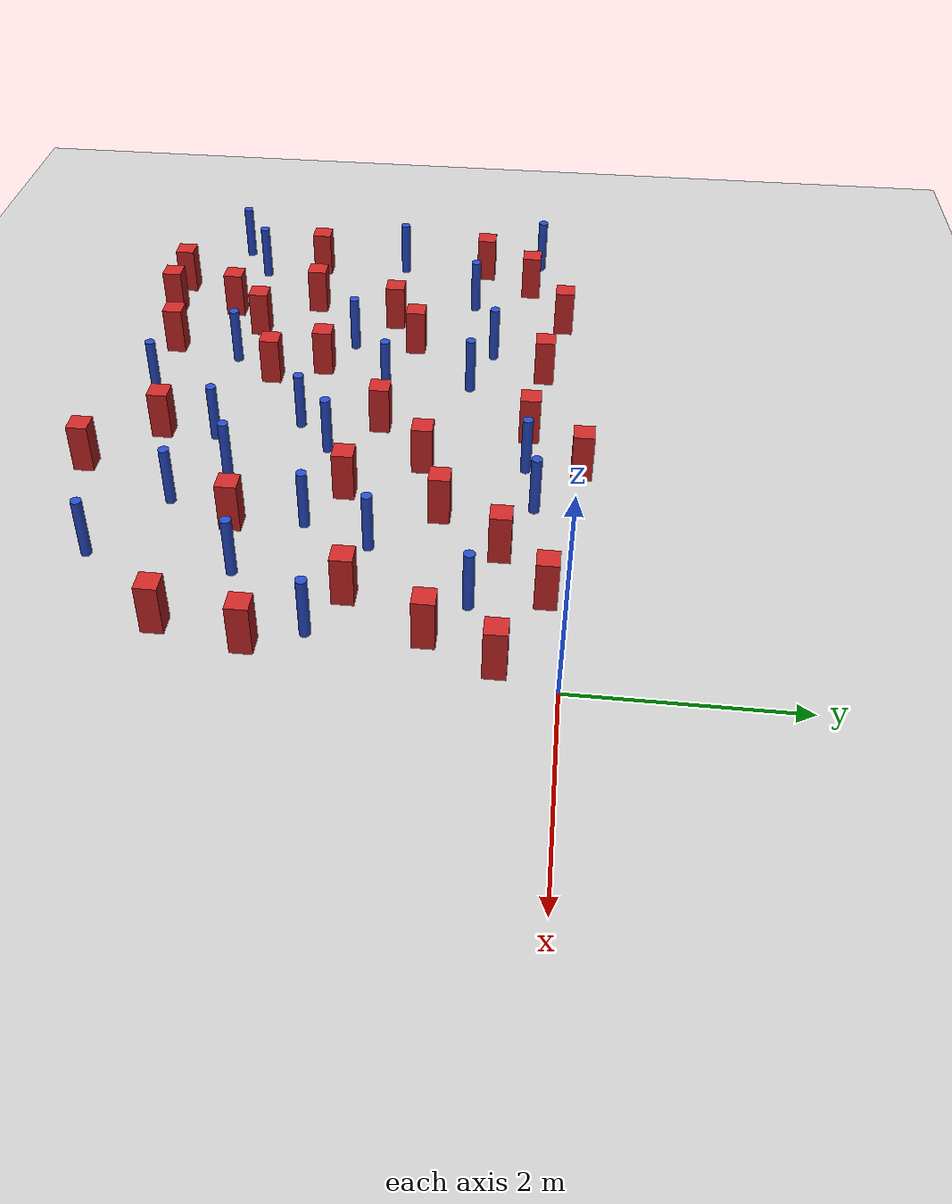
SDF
<sdf version="1.6">
 <world name="default">
  <model name="ground_plane">
   <static>1</static>
   <link name="link">
    <collision name="collision">
     <geometry><plane><normal>0 0 1</normal><size>100 100</size></plane></geometry>
     <surface><friction><ode><mu>100</mu><mu2>50</mu2></ode></friction></surface>
    </collision>
    <visual name="visual">
     <cast_shadows>0</cast_shadows>
     <geometry><plane><normal>0 0 1</normal><size>100 100</size></plane></geometry>
     <material>
      <ambient>1.0 1.0 1.0 1.0</ambient>
      <diffuse>0.8 0.8 0.8 1.0</diffuse>
      <specular>0.01 0.01 0.01 1.000000</specular>
     </material>
    </visual>
   </link>
  </model>
  <model name="square_post_obstacle1">
   <static>true</static>
   <pose>-5.03829176907 -3.4363562072 8.22691968438e-08 7.2212513382e-06 -7.54495500217e-07 2.29674213826e-05</pose>
   <link name="link">
    <pose>0 0 0.25 0 -0 0</pose>
    <inertial>
     <mass>100</mass>
     <inertia>
      <ixx>0.166667</ixx>
      <ixy>0</ixy>
      <ixz>0</ixz>
      <iyy>0.166667</iyy>
      <iyz>0</iyz>
      <izz>0.166667</izz>
     </inertia>
    </inertial>
    <collision name="collision"><geometry><box><size>.2 .2 .5</size></box></geometry></collision>
    <visual name="visual">
     <geometry><box><size>.2 .2 .5</size></box></geometry>
     <material>
      <script><name>Gazebo/Red</name><uri>file://media/materials/scripts/gazebo.material</uri></script>
     </material>
    </visual>
   </link>
  </model>
  <model name="pole_obstacle2">
   <static>true</static>
   <pose>-3.03560111655 -3.47882429792 2.88873142074e-08 -9.90536690232e-09 4.6021994898e-07 -1.20965994968e-07</pose>
   <link name="link">
    <pose>0 0 0.3 0 -0 0</pose>
    <inertial>
     <mass>1</mass>
     <inertia><ixx>0.145833</ixx><ixy>0</ixy><ixz>0</ixz><iyy>0.145833</iyy><iyz>0</iyz><izz>0.125</izz></inertia>
    </inertial>
    <collision name="collision">
     <geometry><cylinder><radius>0.05</radius><length>.6</length></cylinder></geometry>
    </collision>
    <visual name="visual">
     <geometry><cylinder><radius>0.05</radius><length>.6</length></cylinder></geometry>
     <material>
      <script><name>Gazebo/Blue</name><uri>file://media/materials/scripts/gazebo.material</uri></script>
     </material>
    </visual>
   </link>
  </model>
  <model name="square_post_obstacle13">
   <static>true</static>
   <pose>-2.82691644782 0.126163926508 8.22691968438e-08 7.2212513382e-06 -7.54495500217e-07 2.29674213826e-05</pose>
   <link name="link">
    <pose>0 0 0.25 0 -0 0</pose>
    <inertial>
     <mass>100</mass>
     <inertia>
      <ixx>0.166667</ixx>
      <ixy>0</ixy>
      <ixz>0</ixz>
      <iyy>0.166667</iyy>
      <iyz>0</iyz>
      <izz>0.166667</izz>
     </inertia>
    </inertial>
    <collision name="collision"><geometry><box><size>.2 .2 .5</size></box></geometry></collision>
    <visual name="visual">
     <geometry><box><size>.2 .2 .5</size></box></geometry>
     <material>
      <script><name>Gazebo/Red</name><uri>file://media/materials/scripts/gazebo.material</uri></script>
     </material>
    </visual>
   </link>
  </model>
  <model name="square_post_obstacle15">
   <static>true</static>
   <pose>-4.6053324093 -4.27422542623 8.22691968438e-08 7.22125133819e-06 -7.54495500217e-07 2.29674213826e-05</pose>
   <link name="link">
    <pose>0 0 0.25 0 -0 0</pose>
    <inertial>
     <mass>100</mass>
     <inertia>
      <ixx>0.166667</ixx>
      <ixy>0</ixy>
      <ixz>0</ixz>
      <iyy>0.166667</iyy>
      <iyz>0</iyz>
      <izz>0.166667</izz>
     </inertia>
    </inertial>
    <collision name="collision"><geometry><box><size>.2 .2 .5</size></box></geometry></collision>
    <visual name="visual">
     <geometry><box><size>.2 .2 .5</size></box></geometry>
     <material>
      <script><name>Gazebo/Red</name><uri>file://media/materials/scripts/gazebo.material</uri></script>
     </material>
    </visual>
   </link>
  </model>
  <model name="pole_obstacle10">
   <static>true</static>
   <pose>-4.76662883871 -0.850750414074 2.88873142074e-08 -9.90536689837e-09 4.60219948989e-07 -1.2096599496e-07</pose>
   <link name="link">
    <pose>0 0 0.3 0 -0 0</pose>
    <inertial>
     <mass>1</mass>
     <inertia><ixx>0.145833</ixx><ixy>0</ixy><ixz>0</ixz><iyy>0.145833</iyy><iyz>0</iyz><izz>0.125</izz></inertia>
    </inertial>
    <collision name="collision">
     <geometry><cylinder><radius>0.05</radius><length>.6</length></cylinder></geometry>
    </collision>
    <visual name="visual">
     <geometry><cylinder><radius>0.05</radius><length>.6</length></cylinder></geometry>
     <material>
      <script><name>Gazebo/Blue</name><uri>file://media/materials/scripts/gazebo.material</uri></script>
     </material>
    </visual>
   </link>
  </model>
  <model name="pole_obstacle14">
   <static>true</static>
   <pose>-4.43251508346 -3.57022611527 2.88873142074e-08 -9.90536690245e-09 4.6021994898e-07 -1.20965994966e-07</pose>
   <link name="link">
    <pose>0 0 0.3 0 -0 0</pose>
    <inertial>
     <mass>1</mass>
     <inertia><ixx>0.145833</ixx><ixy>0</ixy><ixz>0</ixz><iyy>0.145833</iyy><iyz>0</iyz><izz>0.125</izz></inertia>
    </inertial>
    <collision name="collision">
     <geometry><cylinder><radius>0.05</radius><length>.6</length></cylinder></geometry>
    </collision>
    <visual name="visual">
     <geometry><cylinder><radius>0.05</radius><length>.6</length></cylinder></geometry>
     <material>
      <script><name>Gazebo/Blue</name><uri>file://media/materials/scripts/gazebo.material</uri></script>
     </material>
    </visual>
   </link>
  </model>
  <model name="square_post_obstacle27">
   <static>true</static>
   <pose>-2.30330379362 -2.06793703243 8.22691968438e-08 7.22125133819e-06 -7.54495500217e-07 2.29674213826e-05</pose>
   <link name="link">
    <pose>0 0 0.25 0 -0 0</pose>
    <inertial>
     <mass>100</mass>
     <inertia>
      <ixx>0.166667</ixx>
      <ixy>0</ixy>
      <ixz>0</ixz>
      <iyy>0.166667</iyy>
      <iyz>0</iyz>
      <izz>0.166667</izz>
     </inertia>
    </inertial>
    <collision name="collision"><geometry><box><size>.2 .2 .5</size></box></geometry></collision>
    <visual name="visual">
     <geometry><box><size>.2 .2 .5</size></box></geometry>
     <material>
      <script><name>Gazebo/Red</name><uri>file://media/materials/scripts/gazebo.material</uri></script>
     </material>
    </visual>
   </link>
  </model>
  <model name="square_post_obstacle29">
   <static>true</static>
   <pose>-5.41931736612 -0.126221475294 8.22691968438e-08 7.2212513382e-06 -7.54495500217e-07 2.29674213826e-05</pose>
   <link name="link">
    <pose>0 0 0.25 0 -0 0</pose>
    <inertial>
     <mass>100</mass>
     <inertia>
      <ixx>0.166667</ixx>
      <ixy>0</ixy>
      <ixz>0</ixz>
      <iyy>0.166667</iyy>
      <iyz>0</iyz>
      <izz>0.166667</izz>
     </inertia>
    </inertial>
    <collision name="collision"><geometry><box><size>.2 .2 .5</size></box></geometry></collision>
    <visual name="visual">
     <geometry><box><size>.2 .2 .5</size></box></geometry>
     <material>
      <script><name>Gazebo/Red</name><uri>file://media/materials/scripts/gazebo.material</uri></script>
     </material>
    </visual>
   </link>
  </model>
  <model name="square_post_obstacle34">
   <static>true</static>
   <pose>-5.38451380914 -4.48503809288 8.22691968438e-08 7.22125133819e-06 -7.54495500217e-07 2.29674213826e-05</pose>
   <link name="link">
    <pose>0 0 0.25 0 -0 0</pose>
    <inertial>
     <mass>100</mass>
     <inertia>
      <ixx>0.166667</ixx>
      <ixy>0</ixy>
      <ixz>0</ixz>
      <iyy>0.166667</iyy>
      <iyz>0</iyz>
      <izz>0.166667</izz>
     </inertia>
    </inertial>
    <collision name="collision"><geometry><box><size>.2 .2 .5</size></box></geometry></collision>
    <visual name="visual">
     <geometry><box><size>.2 .2 .5</size></box></geometry>
     <material>
      <script><name>Gazebo/Red</name><uri>file://media/materials/scripts/gazebo.material</uri></script>
     </material>
    </visual>
   </link>
  </model>
  <model name="pole_obstacle35">
   <static>true</static>
   <pose>-3.75419546902 -4.28227238803 2.88873142074e-08 -9.90536692062e-09 4.60219948937e-07 -1.20965994985e-07</pose>
   <link name="link">
    <pose>0 0 0.3 0 -0 0</pose>
    <inertial>
     <mass>1</mass>
     <inertia><ixx>0.145833</ixx><ixy>0</ixy><ixz>0</ixz><iyy>0.145833</iyy><iyz>0</iyz><izz>0.125</izz></inertia>
    </inertial>
    <collision name="collision">
     <geometry><cylinder><radius>0.05</radius><length>.6</length></cylinder></geometry>
    </collision>
    <visual name="visual">
     <geometry><cylinder><radius>0.05</radius><length>.6</length></cylinder></geometry>
     <material>
      <script><name>Gazebo/Blue</name><uri>file://media/materials/scripts/gazebo.material</uri></script>
     </material>
    </visual>
   </link>
  </model>
  <model name="square_post_obstacle36">
   <static>true</static>
   <pose>-6.15775819559 -0.521843063135 8.22691968438e-08 7.22125133819e-06 -7.54495500217e-07 2.29674213826e-05</pose>
   <link name="link">
    <pose>0 0 0.25 0 -0 0</pose>
    <inertial>
     <mass>100</mass>
     <inertia>
      <ixx>0.166667</ixx>
      <ixy>0</ixy>
      <ixz>0</ixz>
      <iyy>0.166667</iyy>
      <iyz>0</iyz>
      <izz>0.166667</izz>
     </inertia>
    </inertial>
    <collision name="collision"><geometry><box><size>.2 .2 .5</size></box></geometry></collision>
    <visual name="visual">
     <geometry><box><size>.2 .2 .5</size></box></geometry>
     <material>
      <script><name>Gazebo/Red</name><uri>file://media/materials/scripts/gazebo.material</uri></script>
     </material>
    </visual>
   </link>
  </model>
  <model name="pole_obstacle41">
   <static>true</static>
   <pose>-2.00583015402 -3.66161861131 2.88873142074e-08 -9.90536692171e-09 4.60219948934e-07 -1.20965994985e-07</pose>
   <link name="link">
    <pose>0 0 0.3 0 -0 0</pose>
    <inertial>
     <mass>1</mass>
     <inertia><ixx>0.145833</ixx><ixy>0</ixy><ixz>0</ixz><iyy>0.145833</iyy><iyz>0</iyz><izz>0.125</izz></inertia>
    </inertial>
    <collision name="collision">
     <geometry><cylinder><radius>0.05</radius><length>.6</length></cylinder></geometry>
    </collision>
    <visual name="visual">
     <geometry><cylinder><radius>0.05</radius><length>.6</length></cylinder></geometry>
     <material>
      <script><name>Gazebo/Blue</name><uri>file://media/materials/scripts/gazebo.material</uri></script>
     </material>
    </visual>
   </link>
  </model>
  <model name="square_post_obstacle42">
   <static>true</static>
   <pose>-3.38391990324 -1.88117775958 8.22691968438e-08 7.2212513382e-06 -7.54495500217e-07 2.29674213826e-05</pose>
   <link name="link">
    <pose>0 0 0.25 0 -0 0</pose>
    <inertial>
     <mass>100</mass>
     <inertia>
      <ixx>0.166667</ixx>
      <ixy>0</ixy>
      <ixz>0</ixz>
      <iyy>0.166667</iyy>
      <iyz>0</iyz>
      <izz>0.166667</izz>
     </inertia>
    </inertial>
    <collision name="collision"><geometry><box><size>.2 .2 .5</size></box></geometry></collision>
    <visual name="visual">
     <geometry><box><size>.2 .2 .5</size></box></geometry>
     <material>
      <script><name>Gazebo/Red</name><uri>file://media/materials/scripts/gazebo.material</uri></script>
     </material>
    </visual>
   </link>
  </model>
  <model name="square_post_obstacle44">
   <static>true</static>
   <pose>-3.06598202881 -4.01060751719 8.22691968438e-08 7.2212513382e-06 -7.54495500217e-07 2.29674213826e-05</pose>
   <link name="link">
    <pose>0 0 0.25 0 -0 0</pose>
    <inertial>
     <mass>100</mass>
     <inertia>
      <ixx>0.166667</ixx>
      <ixy>0</ixy>
      <ixz>0</ixz>
      <iyy>0.166667</iyy>
      <iyz>0</iyz>
      <izz>0.166667</izz>
     </inertia>
    </inertial>
    <collision name="collision"><geometry><box><size>.2 .2 .5</size></box></geometry></collision>
    <visual name="visual">
     <geometry><box><size>.2 .2 .5</size></box></geometry>
     <material>
      <script><name>Gazebo/Red</name><uri>file://media/materials/scripts/gazebo.material</uri></script>
     </material>
    </visual>
   </link>
  </model>
  <model name="square_post_obstacle47">
   <static>true</static>
   <pose>-4.134142469 -3.13054158161 8.22691968438e-08 7.2212513382e-06 -7.54495500217e-07 2.29674213826e-05</pose>
   <link name="link">
    <pose>0 0 0.25 0 -0 0</pose>
    <inertial>
     <mass>100</mass>
     <inertia>
      <ixx>0.166667</ixx>
      <ixy>0</ixy>
      <ixz>0</ixz>
      <iyy>0.166667</iyy>
      <iyz>0</iyz>
      <izz>0.166667</izz>
     </inertia>
    </inertial>
    <collision name="collision"><geometry><box><size>.2 .2 .5</size></box></geometry></collision>
    <visual name="visual">
     <geometry><box><size>.2 .2 .5</size></box></geometry>
     <material>
      <script><name>Gazebo/Red</name><uri>file://media/materials/scripts/gazebo.material</uri></script>
     </material>
    </visual>
   </link>
  </model>
  <model name="pole_obstacle52">
   <static>true</static>
   <pose>-6.53274158325 -2.01664250936 2.88873142074e-08 -9.90536689749e-09 4.60219948991e-07 -1.20965994959e-07</pose>
   <link name="link">
    <pose>0 0 0.3 0 -0 0</pose>
    <inertial>
     <mass>1</mass>
     <inertia><ixx>0.145833</ixx><ixy>0</ixy><ixz>0</ixz><iyy>0.145833</iyy><iyz>0</iyz><izz>0.125</izz></inertia>
    </inertial>
    <collision name="collision">
     <geometry><cylinder><radius>0.05</radius><length>.6</length></cylinder></geometry>
    </collision>
    <visual name="visual">
     <geometry><cylinder><radius>0.05</radius><length>.6</length></cylinder></geometry>
     <material>
      <script><name>Gazebo/Blue</name><uri>file://media/materials/scripts/gazebo.material</uri></script>
     </material>
    </visual>
   </link>
  </model>
  <model name="square_post_obstacle63">
   <static>true</static>
   <pose>-1.74965284042 -3.0216194504 8.22691968438e-08 7.2212513382e-06 -7.54495500217e-07 2.29674213826e-05</pose>
   <link name="link">
    <pose>0 0 0.25 0 -0 0</pose>
    <inertial>
     <mass>100</mass>
     <inertia>
      <ixx>0.166667</ixx>
      <ixy>0</ixy>
      <ixz>0</ixz>
      <iyy>0.166667</iyy>
      <iyz>0</iyz>
      <izz>0.166667</izz>
     </inertia>
    </inertial>
    <collision name="collision"><geometry><box><size>.2 .2 .5</size></box></geometry></collision>
    <visual name="visual">
     <geometry><box><size>.2 .2 .5</size></box></geometry>
     <material>
      <script><name>Gazebo/Red</name><uri>file://media/materials/scripts/gazebo.material</uri></script>
     </material>
    </visual>
   </link>
  </model>
  <model name="pole_obstacle61">
   <static>true</static>
   <pose>-1.10434596322 -2.87603380474 2.88873142074e-08 -9.90536689791e-09 4.6021994899e-07 -1.20965994959e-07</pose>
   <link name="link">
    <pose>0 0 0.3 0 -0 0</pose>
    <inertial>
     <mass>1</mass>
     <inertia><ixx>0.145833</ixx><ixy>0</ixy><ixz>0</ixz><iyy>0.145833</iyy><iyz>0</iyz><izz>0.125</izz></inertia>
    </inertial>
    <collision name="collision">
     <geometry><cylinder><radius>0.05</radius><length>.6</length></cylinder></geometry>
    </collision>
    <visual name="visual">
     <geometry><cylinder><radius>0.05</radius><length>.6</length></cylinder></geometry>
     <material>
      <script><name>Gazebo/Blue</name><uri>file://media/materials/scripts/gazebo.material</uri></script>
     </material>
    </visual>
   </link>
  </model>
  <model name="square_post_obstacle65">
   <static>true</static>
   <pose>-1.57874251354 -0.568553330349 8.22691968438e-08 7.22125133819e-06 -7.54495500217e-07 2.29674213826e-05</pose>
   <link name="link">
    <pose>0 0 0.25 0 -0 0</pose>
    <inertial>
     <mass>100</mass>
     <inertia>
      <ixx>0.166667</ixx>
      <ixy>0</ixy>
      <ixz>0</ixz>
      <iyy>0.166667</iyy>
      <iyz>0</iyz>
      <izz>0.166667</izz>
     </inertia>
    </inertial>
    <collision name="collision"><geometry><box><size>.2 .2 .5</size></box></geometry></collision>
    <visual name="visual">
     <geometry><box><size>.2 .2 .5</size></box></geometry>
     <material>
      <script><name>Gazebo/Red</name><uri>file://media/materials/scripts/gazebo.material</uri></script>
     </material>
    </visual>
   </link>
  </model>
  <model name="square_post_obstacle72">
   <static>true</static>
   <pose>-1.031031879 -0.141461832161 8.22691968438e-08 7.2212513382e-06 -7.54495500217e-07 2.29674213826e-05</pose>
   <link name="link">
    <pose>0 0 0.25 0 -0 0</pose>
    <inertial>
     <mass>100</mass>
     <inertia>
      <ixx>0.166667</ixx>
      <ixy>0</ixy>
      <ixz>0</ixz>
      <iyy>0.166667</iyy>
      <iyz>0</iyz>
      <izz>0.166667</izz>
     </inertia>
    </inertial>
    <collision name="collision"><geometry><box><size>.2 .2 .5</size></box></geometry></collision>
    <visual name="visual">
     <geometry><box><size>.2 .2 .5</size></box></geometry>
     <material>
      <script><name>Gazebo/Red</name><uri>file://media/materials/scripts/gazebo.material</uri></script>
     </material>
    </visual>
   </link>
  </model>
  <model name="square_post_obstacle81">
   <static>true</static>
   <pose>-6.44369759555 -2.98168160678 8.22691968438e-08 7.2212513382e-06 -7.54495500217e-07 2.29674213826e-05</pose>
   <link name="link">
    <pose>0 0 0.25 0 -0 0</pose>
    <inertial>
     <mass>100</mass>
     <inertia>
      <ixx>0.166667</ixx>
      <ixy>0</ixy>
      <ixz>0</ixz>
      <iyy>0.166667</iyy>
      <iyz>0</iyz>
      <izz>0.166667</izz>
     </inertia>
    </inertial>
    <collision name="collision"><geometry><box><size>.2 .2 .5</size></box></geometry></collision>
    <visual name="visual">
     <geometry><box><size>.2 .2 .5</size></box></geometry>
     <material>
      <script><name>Gazebo/Red</name><uri>file://media/materials/scripts/gazebo.material</uri></script>
     </material>
    </visual>
   </link>
  </model>
  <model name="pole_obstacle90">
   <static>true</static>
   <pose>-6.76177031575 -0.426575106834 2.88873142074e-08 -9.90536689981e-09 4.60219948986e-07 -1.20965994962e-07</pose>
   <link name="link">
    <pose>0 0 0.3 0 -0 0</pose>
    <inertial>
     <mass>1</mass>
     <inertia><ixx>0.145833</ixx><ixy>0</ixy><ixz>0</ixz><iyy>0.145833</iyy><iyz>0</iyz><izz>0.125</izz></inertia>
    </inertial>
    <collision name="collision">
     <geometry><cylinder><radius>0.05</radius><length>.6</length></cylinder></geometry>
    </collision>
    <visual name="visual">
     <geometry><cylinder><radius>0.05</radius><length>.6</length></cylinder></geometry>
     <material>
      <script><name>Gazebo/Blue</name><uri>file://media/materials/scripts/gazebo.material</uri></script>
     </material>
    </visual>
   </link>
  </model>
  <model name="pole_obstacle92">
   <static>true</static>
   <pose>-1.80519854814 -2.36120548388 2.88873142074e-08 -9.90536689791e-09 4.6021994899e-07 -1.20965994959e-07</pose>
   <link name="link">
    <pose>0 0 0.3 0 -0 0</pose>
    <inertial>
     <mass>1</mass>
     <inertia><ixx>0.145833</ixx><ixy>0</ixy><ixz>0</ixz><iyy>0.145833</iyy><iyz>0</iyz><izz>0.125</izz></inertia>
    </inertial>
    <collision name="collision">
     <geometry><cylinder><radius>0.05</radius><length>.6</length></cylinder></geometry>
    </collision>
    <visual name="visual">
     <geometry><cylinder><radius>0.05</radius><length>.6</length></cylinder></geometry>
     <material>
      <script><name>Gazebo/Blue</name><uri>file://media/materials/scripts/gazebo.material</uri></script>
     </material>
    </visual>
   </link>
  </model>
  <model name="pole_obstacle95">
   <static>true</static>
   <pose>-0.439773823406 -2.10316071835 2.88873142074e-08 -9.90536689663e-09 4.60219948993e-07 -1.20965994959e-07</pose>
   <link name="link">
    <pose>0 0 0.3 0 -0 0</pose>
    <inertial>
     <mass>1</mass>
     <inertia><ixx>0.145833</ixx><ixy>0</ixy><ixz>0</ixz><iyy>0.145833</iyy><iyz>0</iyz><izz>0.125</izz></inertia>
    </inertial>
    <collision name="collision">
     <geometry><cylinder><radius>0.05</radius><length>.6</length></cylinder></geometry>
    </collision>
    <visual name="visual">
     <geometry><cylinder><radius>0.05</radius><length>.6</length></cylinder></geometry>
     <material>
      <script><name>Gazebo/Blue</name><uri>file://media/materials/scripts/gazebo.material</uri></script>
     </material>
    </visual>
   </link>
  </model>
  <model name="square_post_obstacle84">
   <static>true</static>
   <pose>-5.32880282236 -1.97674150562 8.22691968438e-08 7.22125133819e-06 -7.54495500217e-07 2.29674213826e-05</pose>
   <link name="link">
    <pose>0 0 0.25 0 -0 0</pose>
    <inertial>
     <mass>100</mass>
     <inertia>
      <ixx>0.166667</ixx>
      <ixy>0</ixy>
      <ixz>0</ixz>
      <iyy>0.166667</iyy>
      <iyz>0</iyz>
      <izz>0.166667</izz>
     </inertia>
    </inertial>
    <collision name="collision"><geometry><box><size>.2 .2 .5</size></box></geometry></collision>
    <visual name="visual">
     <geometry><box><size>.2 .2 .5</size></box></geometry>
     <material>
      <script><name>Gazebo/Red</name><uri>file://media/materials/scripts/gazebo.material</uri></script>
     </material>
    </visual>
   </link>
  </model>
  <model name="pole_obstacle99">
   <static>true</static>
   <pose>-4.01764056162 -1.91629681897 2.88873142074e-08 -9.9053668946e-09 4.60219948998e-07 -1.20965994956e-07</pose>
   <link name="link">
    <pose>0 0 0.3 0 -0 0</pose>
    <inertial>
     <mass>1</mass>
     <inertia><ixx>0.145833</ixx><ixy>0</ixy><ixz>0</ixz><iyy>0.145833</iyy><iyz>0</iyz><izz>0.125</izz></inertia>
    </inertial>
    <collision name="collision">
     <geometry><cylinder><radius>0.05</radius><length>.6</length></cylinder></geometry>
    </collision>
    <visual name="visual">
     <geometry><cylinder><radius>0.05</radius><length>.6</length></cylinder></geometry>
     <material>
      <script><name>Gazebo/Blue</name><uri>file://media/materials/scripts/gazebo.material</uri></script>
     </material>
    </visual>
   </link>
  </model>
  <model name="square_post_obstacle90">
   <static>true</static>
   <pose>-4.40837727583 -0.297001451993 8.22691968438e-08 7.2212513382e-06 -7.54495500217e-07 2.29674213826e-05</pose>
   <link name="link">
    <pose>0 0 0.25 0 -0 0</pose>
    <inertial>
     <mass>100</mass>
     <inertia>
      <ixx>0.166667</ixx>
      <ixy>0</ixy>
      <ixz>0</ixz>
      <iyy>0.166667</iyy>
      <iyz>0</iyz>
      <izz>0.166667</izz>
     </inertia>
    </inertial>
    <collision name="collision"><geometry><box><size>.2 .2 .5</size></box></geometry></collision>
    <visual name="visual">
     <geometry><box><size>.2 .2 .5</size></box></geometry>
     <material>
      <script><name>Gazebo/Red</name><uri>file://media/materials/scripts/gazebo.material</uri></script>
     </material>
    </visual>
   </link>
  </model>
  <model name="pole_obstacle102">
   <static>true</static>
   <pose>-4.81508978889 -2.35471480584 2.88873142074e-08 -9.90536690245e-09 4.6021994898e-07 -1.20965994966e-07</pose>
   <link name="link">
    <pose>0 0 0.3 0 -0 0</pose>
    <inertial>
     <mass>1</mass>
     <inertia><ixx>0.145833</ixx><ixy>0</ixy><ixz>0</ixz><iyy>0.145833</iyy><iyz>0</iyz><izz>0.125</izz></inertia>
    </inertial>
    <collision name="collision">
     <geometry><cylinder><radius>0.05</radius><length>.6</length></cylinder></geometry>
    </collision>
    <visual name="visual">
     <geometry><cylinder><radius>0.05</radius><length>.6</length></cylinder></geometry>
     <material>
      <script><name>Gazebo/Blue</name><uri>file://media/materials/scripts/gazebo.material</uri></script>
     </material>
    </visual>
   </link>
  </model>
  <model name="pole_obstacle113">
   <static>true</static>
   <pose>-6.73595152665 -3.92388631935 2.88873142074e-08 -9.90536690245e-09 4.6021994898e-07 -1.20965994966e-07</pose>
   <link name="link">
    <pose>0 0 0.3 0 -0 0</pose>
    <inertial>
     <mass>1</mass>
     <inertia><ixx>0.145833</ixx><ixy>0</ixy><ixz>0</ixz><iyy>0.145833</iyy><iyz>0</iyz><izz>0.125</izz></inertia>
    </inertial>
    <collision name="collision">
     <geometry><cylinder><radius>0.05</radius><length>.6</length></cylinder></geometry>
    </collision>
    <visual name="visual">
     <geometry><cylinder><radius>0.05</radius><length>.6</length></cylinder></geometry>
     <material>
      <script><name>Gazebo/Blue</name><uri>file://media/materials/scripts/gazebo.material</uri></script>
     </material>
    </visual>
   </link>
  </model>
  <model name="square_post_obstacle112">
   <static>true</static>
   <pose>-0.192718613236 -0.515042220873 8.22691968438e-08 7.2212513382e-06 -7.54495500217e-07 2.29674213826e-05</pose>
   <link name="link">
    <pose>0 0 0.25 0 -0 0</pose>
    <inertial>
     <mass>100</mass>
     <inertia>
      <ixx>0.166667</ixx>
      <ixy>0</ixy>
      <ixz>0</ixz>
      <iyy>0.166667</iyy>
      <iyz>0</iyz>
      <izz>0.166667</izz>
     </inertia>
    </inertial>
    <collision name="collision"><geometry><box><size>.2 .2 .5</size></box></geometry></collision>
    <visual name="visual">
     <geometry><box><size>.2 .2 .5</size></box></geometry>
     <material>
      <script><name>Gazebo/Red</name><uri>file://media/materials/scripts/gazebo.material</uri></script>
     </material>
    </visual>
   </link>
  </model>
  <model name="pole_obstacle125">
   <static>true</static>
   <pose>-1.55457147329 -1.7392636958 2.88873142074e-08 -9.90536689672e-09 4.60219948993e-07 -1.20965994959e-07</pose>
   <link name="link">
    <pose>0 0 0.3 0 -0 0</pose>
    <inertial>
     <mass>1</mass>
     <inertia><ixx>0.145833</ixx><ixy>0</ixy><ixz>0</ixz><iyy>0.145833</iyy><iyz>0</iyz><izz>0.125</izz></inertia>
    </inertial>
    <collision name="collision">
     <geometry><cylinder><radius>0.05</radius><length>.6</length></cylinder></geometry>
    </collision>
    <visual name="visual">
     <geometry><cylinder><radius>0.05</radius><length>.6</length></cylinder></geometry>
     <material>
      <script><name>Gazebo/Blue</name><uri>file://media/materials/scripts/gazebo.material</uri></script>
     </material>
    </visual>
   </link>
  </model>
  <model name="square_post_obstacle113">
   <static>true</static>
   <pose>-6.52123922109 -1.06027198226 8.22691968438e-08 7.22125133819e-06 -7.54495500217e-07 2.29674213826e-05</pose>
   <link name="link">
    <pose>0 0 0.25 0 -0 0</pose>
    <inertial>
     <mass>100</mass>
     <inertia>
      <ixx>0.166667</ixx>
      <ixy>0</ixy>
      <ixz>0</ixz>
      <iyy>0.166667</iyy>
      <iyz>0</iyz>
      <izz>0.166667</izz>
     </inertia>
    </inertial>
    <collision name="collision"><geometry><box><size>.2 .2 .5</size></box></geometry></collision>
    <visual name="visual">
     <geometry><box><size>.2 .2 .5</size></box></geometry>
     <material>
      <script><name>Gazebo/Red</name><uri>file://media/materials/scripts/gazebo.material</uri></script>
     </material>
    </visual>
   </link>
  </model>
  <model name="pole_obstacle130">
   <static>true</static>
   <pose>-2.4595243154 -3.22433205107 2.88873142074e-08 -9.90536690232e-09 4.6021994898e-07 -1.20965994968e-07</pose>
   <link name="link">
    <pose>0 0 0.3 0 -0 0</pose>
    <inertial>
     <mass>1</mass>
     <inertia><ixx>0.145833</ixx><ixy>0</ixy><ixz>0</ixz><iyy>0.145833</iyy><iyz>0</iyz><izz>0.125</izz></inertia>
    </inertial>
    <collision name="collision">
     <geometry><cylinder><radius>0.05</radius><length>.6</length></cylinder></geometry>
    </collision>
    <visual name="visual">
     <geometry><cylinder><radius>0.05</radius><length>.6</length></cylinder></geometry>
     <material>
      <script><name>Gazebo/Blue</name><uri>file://media/materials/scripts/gazebo.material</uri></script>
     </material>
    </visual>
   </link>
  </model>
  <model name="pole_obstacle136">
   <static>true</static>
   <pose>-0.901601716112 -0.790417051507 2.88873142074e-08 -9.90536689967e-09 4.60219948986e-07 -1.20965994963e-07</pose>
   <link name="link">
    <pose>0 0 0.3 0 -0 0</pose>
    <inertial>
     <mass>1</mass>
     <inertia><ixx>0.145833</ixx><ixy>0</ixy><ixz>0</ixz><iyy>0.145833</iyy><iyz>0</iyz><izz>0.125</izz></inertia>
    </inertial>
    <collision name="collision">
     <geometry><cylinder><radius>0.05</radius><length>.6</length></cylinder></geometry>
    </collision>
    <visual name="visual">
     <geometry><cylinder><radius>0.05</radius><length>.6</length></cylinder></geometry>
     <material>
      <script><name>Gazebo/Blue</name><uri>file://media/materials/scripts/gazebo.material</uri></script>
     </material>
    </visual>
   </link>
  </model>
  <model name="square_post_obstacle119">
   <static>true</static>
   <pose>-5.41059532979 -3.79991225902 8.22691968438e-08 7.2212513382e-06 -7.54495500217e-07 2.29674213826e-05</pose>
   <link name="link">
    <pose>0 0 0.25 0 -0 0</pose>
    <inertial>
     <mass>100</mass>
     <inertia>
      <ixx>0.166667</ixx>
      <ixy>0</ixy>
      <ixz>0</ixz>
      <iyy>0.166667</iyy>
      <iyz>0</iyz>
      <izz>0.166667</izz>
     </inertia>
    </inertial>
    <collision name="collision"><geometry><box><size>.2 .2 .5</size></box></geometry></collision>
    <visual name="visual">
     <geometry><box><size>.2 .2 .5</size></box></geometry>
     <material>
      <script><name>Gazebo/Red</name><uri>file://media/materials/scripts/gazebo.material</uri></script>
     </material>
    </visual>
   </link>
  </model>
  <model name="square_post_obstacle122">
   <static>true</static>
   <pose>-2.05166362972 -1.15245755582 8.22691968438e-08 7.2212513382e-06 -7.54495500217e-07 2.29674213826e-05</pose>
   <link name="link">
    <pose>0 0 0.25 0 -0 0</pose>
    <inertial>
     <mass>100</mass>
     <inertia>
      <ixx>0.166667</ixx>
      <ixy>0</ixy>
      <ixz>0</ixz>
      <iyy>0.166667</iyy>
      <iyz>0</iyz>
      <izz>0.166667</izz>
     </inertia>
    </inertial>
    <collision name="collision"><geometry><box><size>.2 .2 .5</size></box></geometry></collision>
    <visual name="visual">
     <geometry><box><size>.2 .2 .5</size></box></geometry>
     <material>
      <script><name>Gazebo/Red</name><uri>file://media/materials/scripts/gazebo.material</uri></script>
     </material>
    </visual>
   </link>
  </model>
  <model name="pole_obstacle142">
   <static>true</static>
   <pose>-6.26713169305 -3.62591844009 2.88873142074e-08 -9.90536690245e-09 4.6021994898e-07 -1.20965994966e-07</pose>
   <link name="link">
    <pose>0 0 0.3 0 -0 0</pose>
    <inertial>
     <mass>1</mass>
     <inertia><ixx>0.145833</ixx><ixy>0</ixy><ixz>0</ixz><iyy>0.145833</iyy><iyz>0</iyz><izz>0.125</izz></inertia>
    </inertial>
    <collision name="collision">
     <geometry><cylinder><radius>0.05</radius><length>.6</length></cylinder></geometry>
    </collision>
    <visual name="visual">
     <geometry><cylinder><radius>0.05</radius><length>.6</length></cylinder></geometry>
     <material>
      <script><name>Gazebo/Blue</name><uri>file://media/materials/scripts/gazebo.material</uri></script>
     </material>
    </visual>
   </link>
  </model>
  <model name="pole_obstacle143">
   <static>true</static>
   <pose>-2.23472806477 -0.295933013367 2.88873142074e-08 -9.90536692022e-09 4.60219948938e-07 -1.20965994984e-07</pose>
   <link name="link">
    <pose>0 0 0.3 0 -0 0</pose>
    <inertial>
     <mass>1</mass>
     <inertia><ixx>0.145833</ixx><ixy>0</ixy><ixz>0</ixz><iyy>0.145833</iyy><iyz>0</iyz><izz>0.125</izz></inertia>
    </inertial>
    <collision name="collision">
     <geometry><cylinder><radius>0.05</radius><length>.6</length></cylinder></geometry>
    </collision>
    <visual name="visual">
     <geometry><cylinder><radius>0.05</radius><length>.6</length></cylinder></geometry>
     <material>
      <script><name>Gazebo/Blue</name><uri>file://media/materials/scripts/gazebo.material</uri></script>
     </material>
    </visual>
   </link>
  </model>
  <model name="pole_obstacle145">
   <static>true</static>
   <pose>-4.13313696514 -1.05130566699 2.88873142074e-08 -9.90536689445e-09 4.60219948999e-07 -1.20965994956e-07</pose>
   <link name="link">
    <pose>0 0 0.3 0 -0 0</pose>
    <inertial>
     <mass>1</mass>
     <inertia><ixx>0.145833</ixx><ixy>0</ixy><ixz>0</ixz><iyy>0.145833</iyy><iyz>0</iyz><izz>0.125</izz></inertia>
    </inertial>
    <collision name="collision">
     <geometry><cylinder><radius>0.05</radius><length>.6</length></cylinder></geometry>
    </collision>
    <visual name="visual">
     <geometry><cylinder><radius>0.05</radius><length>.6</length></cylinder></geometry>
     <material>
      <script><name>Gazebo/Blue</name><uri>file://media/materials/scripts/gazebo.material</uri></script>
     </material>
    </visual>
   </link>
  </model>
  <model name="pole_obstacle150">
   <static>true</static>
   <pose>-2.82389022166 -0.405805588791 2.88873142074e-08 -9.90536689307e-09 4.60219949002e-07 -1.20965994954e-07</pose>
   <link name="link">
    <pose>0 0 0.3 0 -0 0</pose>
    <inertial>
     <mass>1</mass>
     <inertia><ixx>0.145833</ixx><ixy>0</ixy><ixz>0</ixz><iyy>0.145833</iyy><iyz>0</iyz><izz>0.125</izz></inertia>
    </inertial>
    <collision name="collision">
     <geometry><cylinder><radius>0.05</radius><length>.6</length></cylinder></geometry>
    </collision>
    <visual name="visual">
     <geometry><cylinder><radius>0.05</radius><length>.6</length></cylinder></geometry>
     <material>
      <script><name>Gazebo/Blue</name><uri>file://media/materials/scripts/gazebo.material</uri></script>
     </material>
    </visual>
   </link>
  </model>
  <model name="square_post_obstacle141">
   <static>true</static>
   <pose>-0.249987931047 -2.57970286217 8.22691968438e-08 7.2212513382e-06 -7.54495500217e-07 2.29674213826e-05</pose>
   <link name="link">
    <pose>0 0 0.25 0 -0 0</pose>
    <inertial>
     <mass>100</mass>
     <inertia>
      <ixx>0.166667</ixx>
      <ixy>0</ixy>
      <ixz>0</ixz>
      <iyy>0.166667</iyy>
      <iyz>0</iyz>
      <izz>0.166667</izz>
     </inertia>
    </inertial>
    <collision name="collision"><geometry><box><size>.2 .2 .5</size></box></geometry></collision>
    <visual name="visual">
     <geometry><box><size>.2 .2 .5</size></box></geometry>
     <material>
      <script><name>Gazebo/Red</name><uri>file://media/materials/scripts/gazebo.material</uri></script>
     </material>
    </visual>
   </link>
  </model>
  <model name="square_post_obstacle146">
   <static>true</static>
   <pose>-2.7728452262 -1.39028826844 8.22691968438e-08 7.2212513382e-06 -7.54495500217e-07 2.29674213826e-05</pose>
   <link name="link">
    <pose>0 0 0.25 0 -0 0</pose>
    <inertial>
     <mass>100</mass>
     <inertia>
      <ixx>0.166667</ixx>
      <ixy>0</ixy>
      <ixz>0</ixz>
      <iyy>0.166667</iyy>
      <iyz>0</iyz>
      <izz>0.166667</izz>
     </inertia>
    </inertial>
    <collision name="collision"><geometry><box><size>.2 .2 .5</size></box></geometry></collision>
    <visual name="visual">
     <geometry><box><size>.2 .2 .5</size></box></geometry>
     <material>
      <script><name>Gazebo/Red</name><uri>file://media/materials/scripts/gazebo.material</uri></script>
     </material>
    </visual>
   </link>
  </model>
  <model name="square_post_obstacle147">
   <static>true</static>
   <pose>-3.36418078406 -0.398746963618 8.22691968438e-08 7.22125133819e-06 -7.54495500217e-07 2.29674213826e-05</pose>
   <link name="link">
    <pose>0 0 0.25 0 -0 0</pose>
    <inertial>
     <mass>100</mass>
     <inertia>
      <ixx>0.166667</ixx>
      <ixy>0</ixy>
      <ixz>0</ixz>
      <iyy>0.166667</iyy>
      <iyz>0</iyz>
      <izz>0.166667</izz>
     </inertia>
    </inertial>
    <collision name="collision"><geometry><box><size>.2 .2 .5</size></box></geometry></collision>
    <visual name="visual">
     <geometry><box><size>.2 .2 .5</size></box></geometry>
     <material>
      <script><name>Gazebo/Red</name><uri>file://media/materials/scripts/gazebo.material</uri></script>
     </material>
    </visual>
   </link>
  </model>
  <model name="pole_obstacle163">
   <static>true</static>
   <pose>-5.74663099679 -1.12712785343 2.88873142074e-08 -9.90536689445e-09 4.60219948999e-07 -1.20965994956e-07</pose>
   <link name="link">
    <pose>0 0 0.3 0 -0 0</pose>
    <inertial>
     <mass>1</mass>
     <inertia><ixx>0.145833</ixx><ixy>0</ixy><ixz>0</ixz><iyy>0.145833</iyy><iyz>0</iyz><izz>0.125</izz></inertia>
    </inertial>
    <collision name="collision">
     <geometry><cylinder><radius>0.05</radius><length>.6</length></cylinder></geometry>
    </collision>
    <visual name="visual">
     <geometry><cylinder><radius>0.05</radius><length>.6</length></cylinder></geometry>
     <material>
      <script><name>Gazebo/Blue</name><uri>file://media/materials/scripts/gazebo.material</uri></script>
     </material>
    </visual>
   </link>
  </model>
  <model name="square_post_obstacle164">
   <static>true</static>
   <pose>-2.46027920437 -4.61213825727 8.22691968438e-08 7.22125133819e-06 -7.54495500217e-07 2.29674213826e-05</pose>
   <link name="link">
    <pose>0 0 0.25 0 -0 0</pose>
    <inertial>
     <mass>100</mass>
     <inertia>
      <ixx>0.166667</ixx>
      <ixy>0</ixy>
      <ixz>0</ixz>
      <iyy>0.166667</iyy>
      <iyz>0</iyz>
      <izz>0.166667</izz>
     </inertia>
    </inertial>
    <collision name="collision"><geometry><box><size>.2 .2 .5</size></box></geometry></collision>
    <visual name="visual">
     <geometry><box><size>.2 .2 .5</size></box></geometry>
     <material>
      <script><name>Gazebo/Red</name><uri>file://media/materials/scripts/gazebo.material</uri></script>
     </material>
    </visual>
   </link>
  </model>
  <model name="pole_obstacle176">
   <static>true</static>
   <pose>-2.9402971459 -2.3425635521 2.88873142074e-08 -9.90536690232e-09 4.6021994898e-07 -1.20965994968e-07</pose>
   <link name="link">
    <pose>0 0 0.3 0 -0 0</pose>
    <inertial>
     <mass>1</mass>
     <inertia><ixx>0.145833</ixx><ixy>0</ixy><ixz>0</ixz><iyy>0.145833</iyy><iyz>0</iyz><izz>0.125</izz></inertia>
    </inertial>
    <collision name="collision">
     <geometry><cylinder><radius>0.05</radius><length>.6</length></cylinder></geometry>
    </collision>
    <visual name="visual">
     <geometry><cylinder><radius>0.05</radius><length>.6</length></cylinder></geometry>
     <material>
      <script><name>Gazebo/Blue</name><uri>file://media/materials/scripts/gazebo.material</uri></script>
     </material>
    </visual>
   </link>
  </model>
  <model name="square_post_obstacle166">
   <static>true</static>
   <pose>-5.89167419524 -4.46758545913 8.22691968438e-08 7.22125133819e-06 -7.54495500217e-07 2.29674213826e-05</pose>
   <link name="link">
    <pose>0 0 0.25 0 -0 0</pose>
    <inertial>
     <mass>100</mass>
     <inertia>
      <ixx>0.166667</ixx>
      <ixy>0</ixy>
      <ixz>0</ixz>
      <iyy>0.166667</iyy>
      <iyz>0</iyz>
      <izz>0.166667</izz>
     </inertia>
    </inertial>
    <collision name="collision"><geometry><box><size>.2 .2 .5</size></box></geometry></collision>
    <visual name="visual">
     <geometry><box><size>.2 .2 .5</size></box></geometry>
     <material>
      <script><name>Gazebo/Red</name><uri>file://media/materials/scripts/gazebo.material</uri></script>
     </material>
    </visual>
   </link>
  </model>
  <model name="square_post_obstacle168">
   <static>true</static>
   <pose>-4.84765001366 -1.69523566977 8.22691968438e-08 7.2212513382e-06 -7.54495500217e-07 2.29674213826e-05</pose>
   <link name="link">
    <pose>0 0 0.25 0 -0 0</pose>
    <inertial>
     <mass>100</mass>
     <inertia>
      <ixx>0.166667</ixx>
      <ixy>0</ixy>
      <ixz>0</ixz>
      <iyy>0.166667</iyy>
      <iyz>0</iyz>
      <izz>0.166667</izz>
     </inertia>
    </inertial>
    <collision name="collision"><geometry><box><size>.2 .2 .5</size></box></geometry></collision>
    <visual name="visual">
     <geometry><box><size>.2 .2 .5</size></box></geometry>
     <material>
      <script><name>Gazebo/Red</name><uri>file://media/materials/scripts/gazebo.material</uri></script>
     </material>
    </visual>
   </link>
  </model>
  <model name="square_post_obstacle180">
   <static>true</static>
   <pose>-5.59660562549 -2.88901375561 8.22691968438e-08 7.2212513382e-06 -7.54495500217e-07 2.29674213826e-05</pose>
   <link name="link">
    <pose>0 0 0.25 0 -0 0</pose>
    <inertial>
     <mass>100</mass>
     <inertia>
      <ixx>0.166667</ixx>
      <ixy>0</ixy>
      <ixz>0</ixz>
      <iyy>0.166667</iyy>
      <iyz>0</iyz>
      <izz>0.166667</izz>
     </inertia>
    </inertial>
    <collision name="collision"><geometry><box><size>.2 .2 .5</size></box></geometry></collision>
    <visual name="visual">
     <geometry><box><size>.2 .2 .5</size></box></geometry>
     <material>
      <script><name>Gazebo/Red</name><uri>file://media/materials/scripts/gazebo.material</uri></script>
     </material>
    </visual>
   </link>
  </model>
  <model name="square_post_obstacle185">
   <static>true</static>
   <pose>-0.398232729338 -3.36260104515 8.22691968438e-08 7.2212513382e-06 -7.54495500217e-07 2.29674213826e-05</pose>
   <link name="link">
    <pose>0 0 0.25 0 -0 0</pose>
    <inertial>
     <mass>100</mass>
     <inertia>
      <ixx>0.166667</ixx>
      <ixy>0</ixy>
      <ixz>0</ixz>
      <iyy>0.166667</iyy>
      <iyz>0</iyz>
      <izz>0.166667</izz>
     </inertia>
    </inertial>
    <collision name="collision"><geometry><box><size>.2 .2 .5</size></box></geometry></collision>
    <visual name="visual">
     <geometry><box><size>.2 .2 .5</size></box></geometry>
     <material>
      <script><name>Gazebo/Red</name><uri>file://media/materials/scripts/gazebo.material</uri></script>
     </material>
    </visual>
   </link>
  </model>
  <model name="square_post_obstacle207">
   <static>true</static>
   <pose>-0.902671042137 -1.84884533245 8.22691968438e-08 7.22125133819e-06 -7.54495500217e-07 2.29674213826e-05</pose>
   <link name="link">
    <pose>0 0 0.25 0 -0 0</pose>
    <inertial>
     <mass>100</mass>
     <inertia>
      <ixx>0.166667</ixx>
      <ixy>0</ixy>
      <ixz>0</ixz>
      <iyy>0.166667</iyy>
      <iyz>0</iyz>
      <izz>0.166667</izz>
     </inertia>
    </inertial>
    <collision name="collision"><geometry><box><size>.2 .2 .5</size></box></geometry></collision>
    <visual name="visual">
     <geometry><box><size>.2 .2 .5</size></box></geometry>
     <material>
      <script><name>Gazebo/Red</name><uri>file://media/materials/scripts/gazebo.material</uri></script>
     </material>
    </visual>
   </link>
  </model>
  <model name="pole_obstacle193">
   <static>true</static>
   <pose>-3.32234502756 -2.67524452372 2.88873142074e-08 -9.90536689597e-09 4.60219948995e-07 -1.20965994957e-07</pose>
   <link name="link">
    <pose>0 0 0.3 0 -0 0</pose>
    <inertial>
     <mass>1</mass>
     <inertia><ixx>0.145833</ixx><ixy>0</ixy><ixz>0</ixz><iyy>0.145833</iyy><iyz>0</iyz><izz>0.125</izz></inertia>
    </inertial>
    <collision name="collision">
     <geometry><cylinder><radius>0.05</radius><length>.6</length></cylinder></geometry>
    </collision>
    <visual name="visual">
     <geometry><cylinder><radius>0.05</radius><length>.6</length></cylinder></geometry>
     <material>
      <script><name>Gazebo/Blue</name><uri>file://media/materials/scripts/gazebo.material</uri></script>
     </material>
    </visual>
   </link>
  </model>
  <model name="pole_obstacle195">
   <static>true</static>
   <pose>-1.20920719411 -4.21356890402 2.88873142074e-08 -9.90536689852e-09 4.60219948989e-07 -1.2096599496e-07</pose>
   <link name="link">
    <pose>0 0 0.3 0 -0 0</pose>
    <inertial>
     <mass>1</mass>
     <inertia><ixx>0.145833</ixx><ixy>0</ixy><ixz>0</ixz><iyy>0.145833</iyy><iyz>0</iyz><izz>0.125</izz></inertia>
    </inertial>
    <collision name="collision">
     <geometry><cylinder><radius>0.05</radius><length>.6</length></cylinder></geometry>
    </collision>
    <visual name="visual">
     <geometry><cylinder><radius>0.05</radius><length>.6</length></cylinder></geometry>
     <material>
      <script><name>Gazebo/Blue</name><uri>file://media/materials/scripts/gazebo.material</uri></script>
     </material>
    </visual>
   </link>
  </model>
  <model name="square_post_obstacle215">
   <static>true</static>
   <pose>-0.469464898134 -1.11448649941 8.22691968438e-08 7.2212513382e-06 -7.54495500217e-07 2.29674213826e-05</pose>
   <link name="link">
    <pose>0 0 0.25 0 -0 0</pose>
    <inertial>
     <mass>100</mass>
     <inertia>
      <ixx>0.166667</ixx>
      <ixy>0</ixy>
      <ixz>0</ixz>
      <iyy>0.166667</iyy>
      <iyz>0</iyz>
      <izz>0.166667</izz>
     </inertia>
    </inertial>
    <collision name="collision"><geometry><box><size>.2 .2 .5</size></box></geometry></collision>
    <visual name="visual">
     <geometry><box><size>.2 .2 .5</size></box></geometry>
     <material>
      <script><name>Gazebo/Red</name><uri>file://media/materials/scripts/gazebo.material</uri></script>
     </material>
    </visual>
   </link>
  </model>
  <model name="square_post_obstacle229">
   <static>true</static>
   <pose>-4.34585996738 -2.61468003534 8.22691968438e-08 7.2212513382e-06 -7.54495500217e-07 2.29674213826e-05</pose>
   <link name="link">
    <pose>0 0 0.25 0 -0 0</pose>
    <inertial>
     <mass>100</mass>
     <inertia>
      <ixx>0.166667</ixx>
      <ixy>0</ixy>
      <ixz>0</ixz>
      <iyy>0.166667</iyy>
      <iyz>0</iyz>
      <izz>0.166667</izz>
     </inertia>
    </inertial>
    <collision name="collision"><geometry><box><size>.2 .2 .5</size></box></geometry></collision>
    <visual name="visual">
     <geometry><box><size>.2 .2 .5</size></box></geometry>
     <material>
      <script><name>Gazebo/Red</name><uri>file://media/materials/scripts/gazebo.material</uri></script>
     </material>
    </visual>
   </link>
  </model>
 </world>
</sdf>
